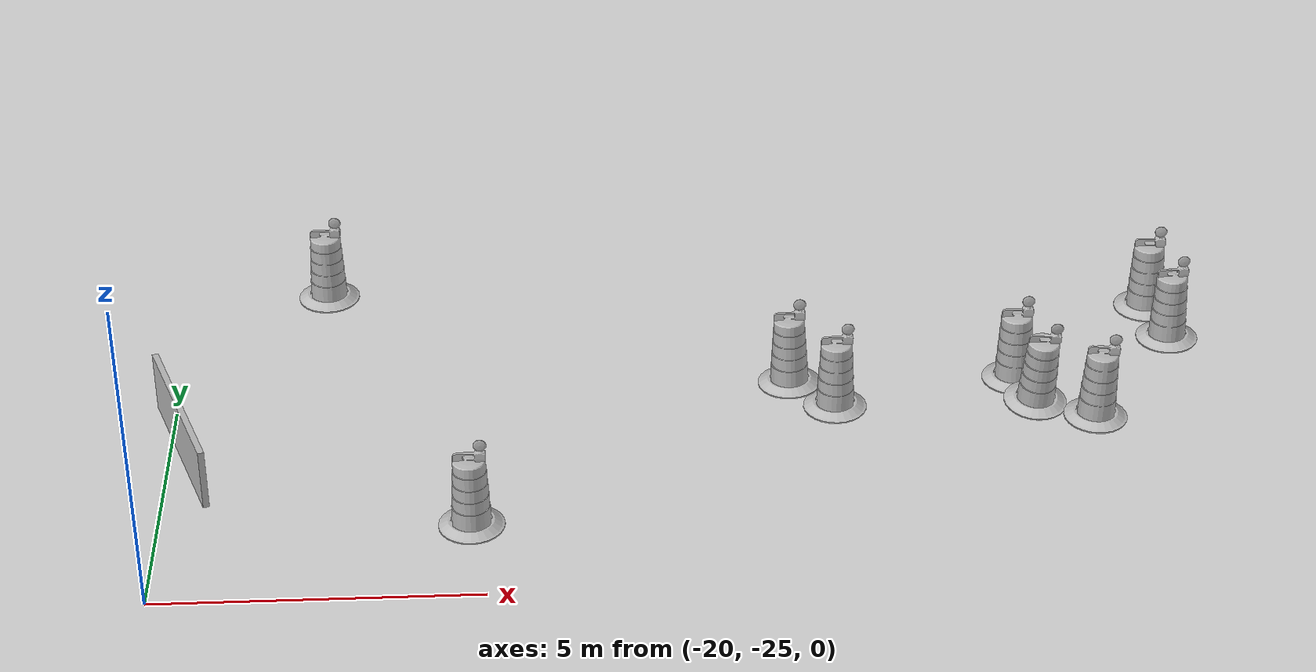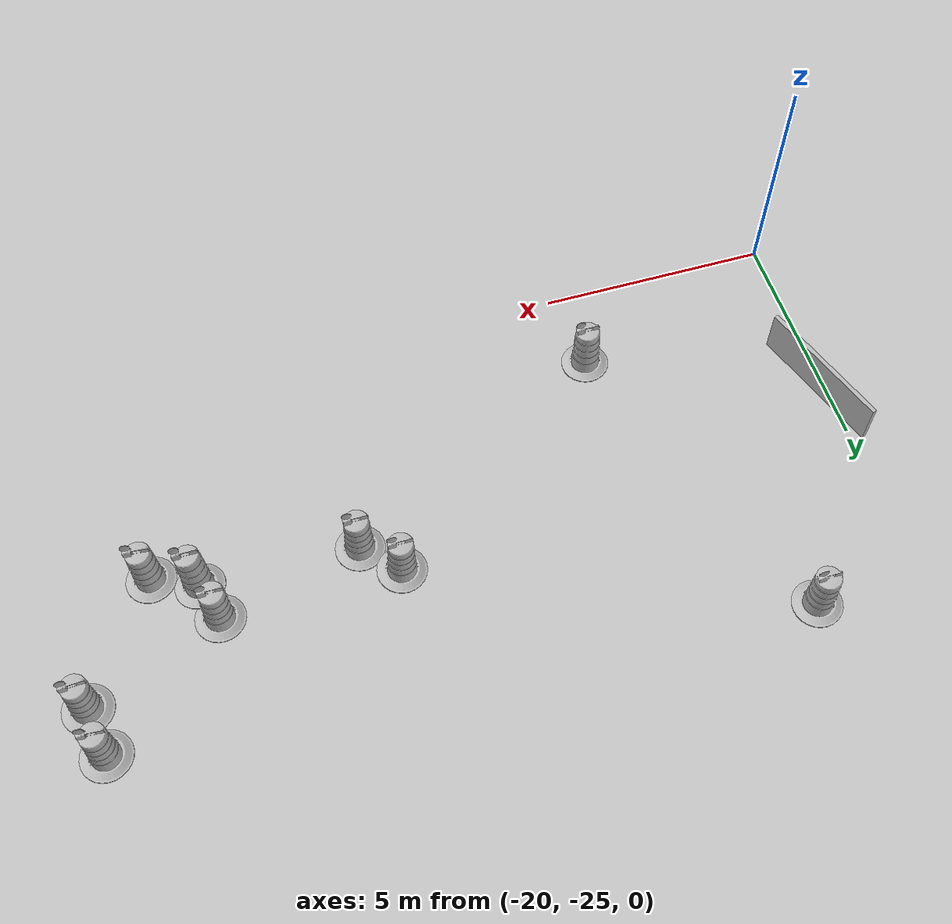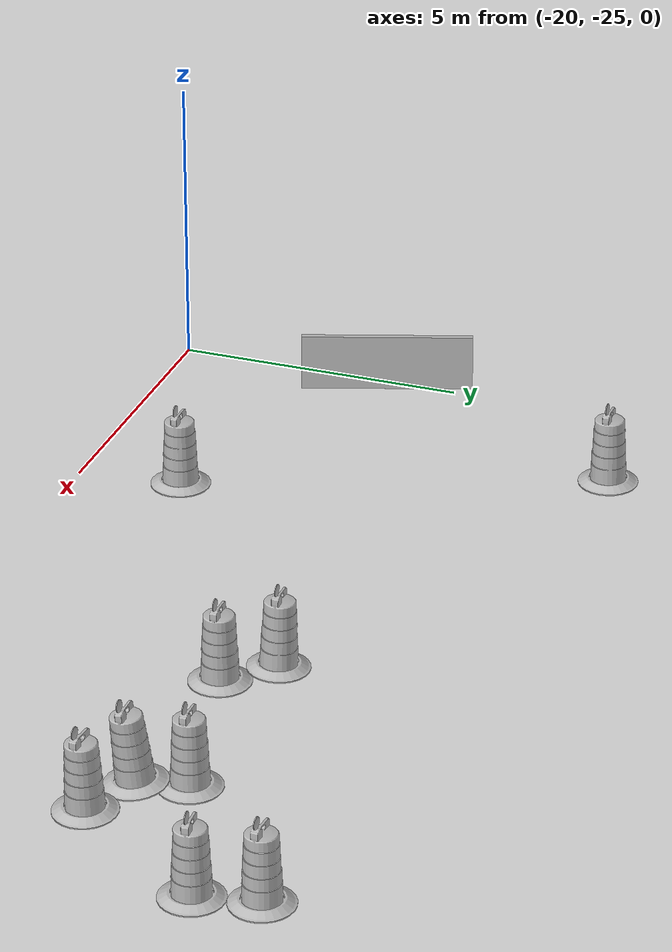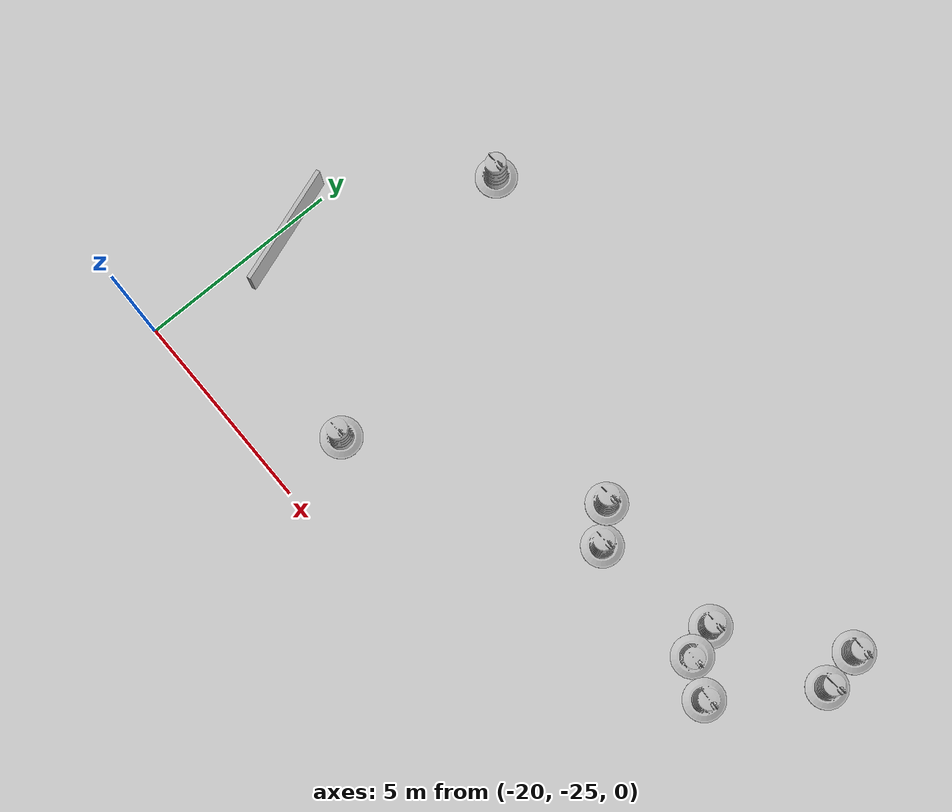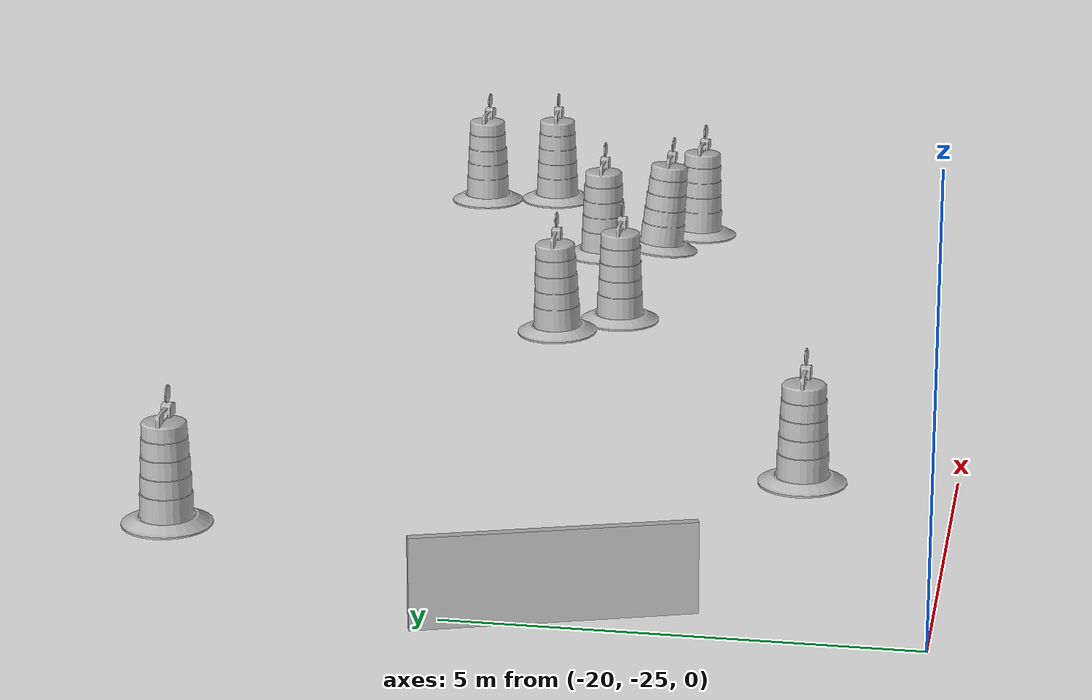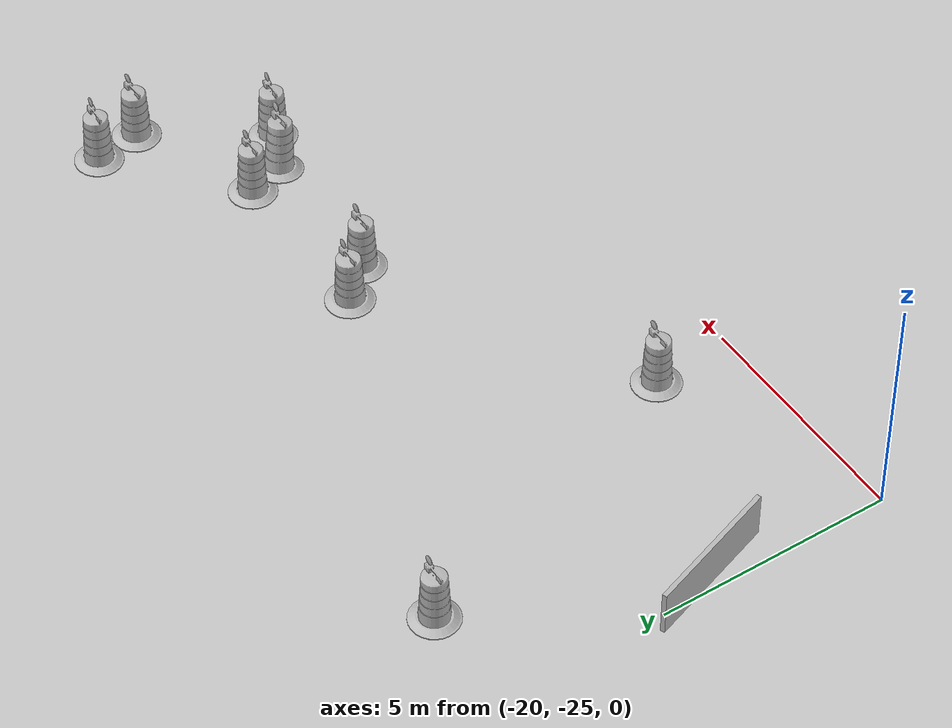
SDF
<sdf version="1.7">
 <world name="default">
  <model name="Construction Barrel_1">
   <link name="link">
    <inertial>
     <pose>0 0 0.4 0 -0 0</pose>
     <mass>500</mass>
     <inertia><ixx>51.2096</ixx><iyy>51.2096</iyy><izz>25</izz><ixy>0</ixy><ixz>0</ixz><iyz>0</iyz></inertia>
    </inertial>
    <collision name="collision">
     <geometry><mesh><uri>model://construction_barrel/meshes/construction_barrel.dae</uri></mesh></geometry>
    </collision>
    <visual name="visual">
     <geometry><mesh><uri>model://construction_barrel/meshes/construction_barrel.dae</uri></mesh></geometry>
    </visual>
    <velocity_decay><linear>0</linear><angular>0</angular></velocity_decay>
   </link>
   <pose>-17.75 -16.5 -2e-06 7e-06 -4e-06 -0.003008</pose>
   <static>0</static>
  </model>
  <model name="Construction Barrel_2">
   <link name="link">
    <inertial>
     <pose>0 0 0.4 0 -0 0</pose>
     <mass>500</mass>
     <inertia><ixx>51.2096</ixx><iyy>51.2096</iyy><izz>25</izz><ixy>0</ixy><ixz>0</ixz><iyz>0</iyz></inertia>
    </inertial>
    <collision name="collision">
     <geometry><mesh><uri>model://construction_barrel/meshes/construction_barrel.dae</uri></mesh></geometry>
    </collision>
    <visual name="visual">
     <geometry><mesh><uri>model://construction_barrel/meshes/construction_barrel.dae</uri></mesh></geometry>
    </visual>
    <velocity_decay><linear>0</linear><angular>0</angular></velocity_decay>
   </link>
   <pose>-15.25 -23.25 -2e-06 7e-06 -4e-06 -0.002793</pose>
   <static>0</static>
  </model>
  <model name="Construction Barrel_3">
   <link name="link">
    <inertial>
     <pose>0 0 0.4 0 -0 0</pose>
     <mass>500</mass>
     <inertia><ixx>51.2096</ixx><iyy>51.2096</iyy><izz>25</izz><ixy>0</ixy><ixz>0</ixz><iyz>0</iyz></inertia>
    </inertial>
    <collision name="collision">
     <geometry><mesh><uri>model://construction_barrel/meshes/construction_barrel.dae</uri></mesh></geometry>
    </collision>
    <visual name="visual">
     <geometry><mesh><uri>model://construction_barrel/meshes/construction_barrel.dae</uri></mesh></geometry>
    </visual>
    <velocity_decay><linear>0</linear><angular>0</angular></velocity_decay>
   </link>
   <pose>-10.1346 -19.5518 0.01496 -0.023481 -0.018014 0.01688</pose>
   <static>0</static>
  </model>
  <model name="Construction Barrel_4">
   <link name="link">
    <inertial>
     <pose>0 0 0.4 0 -0 0</pose>
     <mass>500</mass>
     <inertia><ixx>51.2096</ixx><iyy>51.2096</iyy><izz>25</izz><ixy>0</ixy><ixz>0</ixz><iyz>0</iyz></inertia>
    </inertial>
    <collision name="collision">
     <geometry><mesh><uri>model://construction_barrel/meshes/construction_barrel.dae</uri></mesh></geometry>
    </collision>
    <visual name="visual">
     <geometry><mesh><uri>model://construction_barrel/meshes/construction_barrel.dae</uri></mesh></geometry>
    </visual>
    <velocity_decay><linear>0</linear><angular>0</angular></velocity_decay>
   </link>
   <pose>-9.45386 -20.2628 -1.2e-05 1e-05 -4e-06 0.005931</pose>
   <static>0</static>
  </model>
  <model name="Construction Barrel_5">
   <link name="link">
    <inertial>
     <pose>0 0 0.4 0 -0 0</pose>
     <mass>500</mass>
     <inertia><ixx>51.2096</ixx><iyy>51.2096</iyy><izz>25</izz><ixy>0</ixy><ixz>0</ixz><iyz>0</iyz></inertia>
    </inertial>
    <collision name="collision">
     <geometry><mesh><uri>model://construction_barrel/meshes/construction_barrel.dae</uri></mesh></geometry>
    </collision>
    <visual name="visual">
     <geometry><mesh><uri>model://construction_barrel/meshes/construction_barrel.dae</uri></mesh></geometry>
    </visual>
    <velocity_decay><linear>0</linear><angular>0</angular></velocity_decay>
   </link>
   <pose>-6.22627 -20.3369 0.053048 0.090065 0.052506 -0.013302</pose>
   <static>0</static>
  </model>
  <model name="Construction Barrel_6">
   <link name="link">
    <inertial>
     <pose>0 0 0.4 0 -0 0</pose>
     <mass>500</mass>
     <inertia><ixx>51.2096</ixx><iyy>51.2096</iyy><izz>25</izz><ixy>0</ixy><ixz>0</ixz><iyz>0</iyz></inertia>
    </inertial>
    <collision name="collision">
     <geometry><mesh><uri>model://construction_barrel/meshes/construction_barrel.dae</uri></mesh></geometry>
    </collision>
    <visual name="visual">
     <geometry><mesh><uri>model://construction_barrel/meshes/construction_barrel.dae</uri></mesh></geometry>
    </visual>
    <velocity_decay><linear>0</linear><angular>0</angular></velocity_decay>
   </link>
   <pose>-5.31545 -20.7659 0.017408 0.013574 0.031593 -0.082042</pose>
   <static>0</static>
  </model>
  <model name="Construction Barrel_7">
   <link name="link">
    <inertial>
     <pose>0 0 0.4 0 -0 0</pose>
     <mass>500</mass>
     <inertia><ixx>51.2096</ixx><iyy>51.2096</iyy><izz>25</izz><ixy>0</ixy><ixz>0</ixz><iyz>0</iyz></inertia>
    </inertial>
    <collision name="collision">
     <geometry><mesh><uri>model://construction_barrel/meshes/construction_barrel.dae</uri></mesh></geometry>
    </collision>
    <visual name="visual">
     <geometry><mesh><uri>model://construction_barrel/meshes/construction_barrel.dae</uri></mesh></geometry>
    </visual>
    <velocity_decay><linear>0</linear><angular>0</angular></velocity_decay>
   </link>
   <pose>-6.47356 -19.5667 -2e-06 2e-06 5e-06 0.003889</pose>
   <static>0</static>
  </model>
  <model name="Construction Barrel_8">
   <link name="link">
    <inertial>
     <pose>0 0 0.4 0 -0 0</pose>
     <mass>500</mass>
     <inertia><ixx>51.2096</ixx><iyy>51.2096</iyy><izz>25</izz><ixy>0</ixy><ixz>0</ixz><iyz>0</iyz></inertia>
    </inertial>
    <collision name="collision">
     <geometry><mesh><uri>model://construction_barrel/meshes/construction_barrel.dae</uri></mesh></geometry>
    </collision>
    <visual name="visual">
     <geometry><mesh><uri>model://construction_barrel/meshes/construction_barrel.dae</uri></mesh></geometry>
    </visual>
    <velocity_decay><linear>0</linear><angular>0</angular></velocity_decay>
   </link>
   <pose>-3.9439 -17.4575 -0 0 0 -0.058637</pose>
   <static>0</static>
  </model>
  <model name="Construction Barrel_9">
   <link name="link">
    <inertial>
     <pose>0 0 0.4 0 -0 0</pose>
     <mass>500</mass>
     <inertia><ixx>51.2096</ixx><iyy>51.2096</iyy><izz>25</izz><ixy>0</ixy><ixz>0</ixz><iyz>0</iyz></inertia>
    </inertial>
    <collision name="collision">
     <geometry><mesh><uri>model://construction_barrel/meshes/construction_barrel.dae</uri></mesh></geometry>
    </collision>
    <visual name="visual">
     <geometry><mesh><uri>model://construction_barrel/meshes/construction_barrel.dae</uri></mesh></geometry>
    </visual>
    <velocity_decay><linear>0</linear><angular>0</angular></velocity_decay>
   </link>
   <pose>-3.74327 -18.4545 -0 0 -0 0.057187</pose>
   <static>0</static>
  </model>
  <model name="barricade_3">
   <static>1</static>
   <pose>-19.8 -21.17 0.5 0 -0 1.9</pose>
   <link name="link">
    <collision name="collision"><geometry><box><size>3 0.1 1</size></box></geometry></collision>
    <visual name="visual"><geometry><box><size>3 0.1 1</size></box></geometry></visual>
   </link>
  </model>
 </world>
</sdf>
